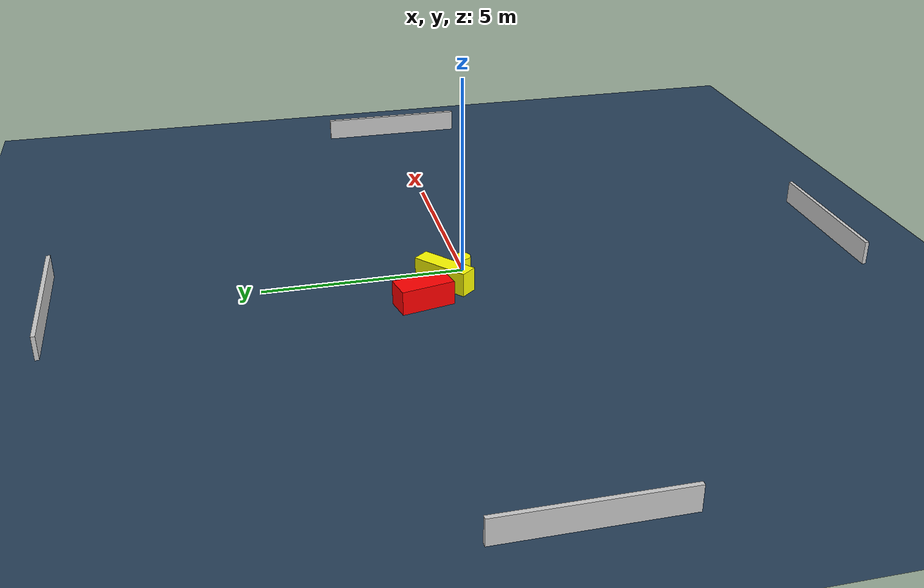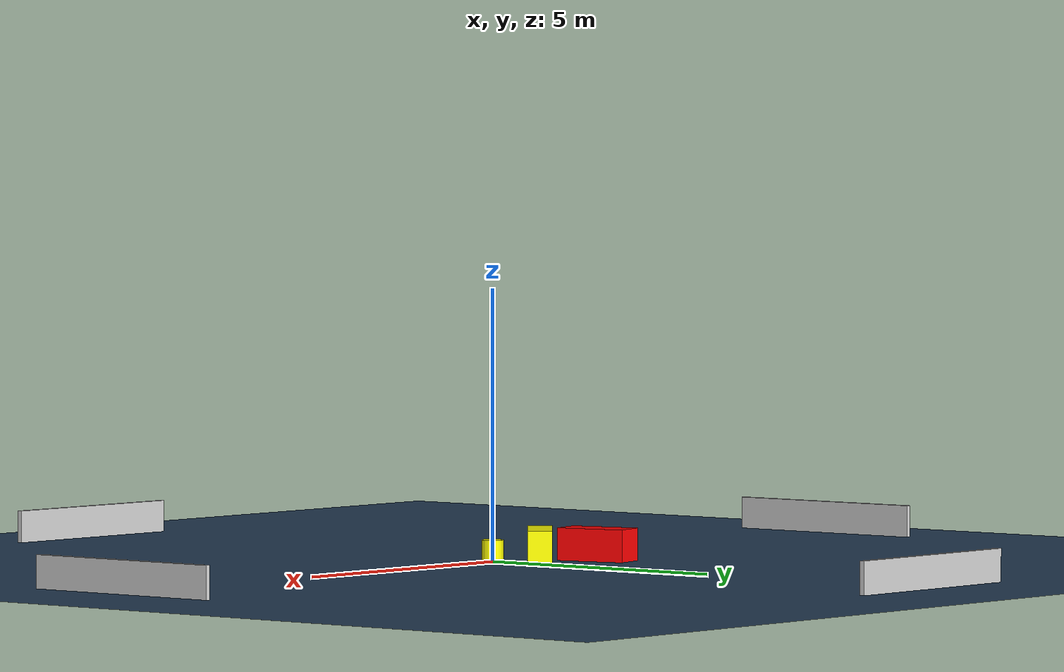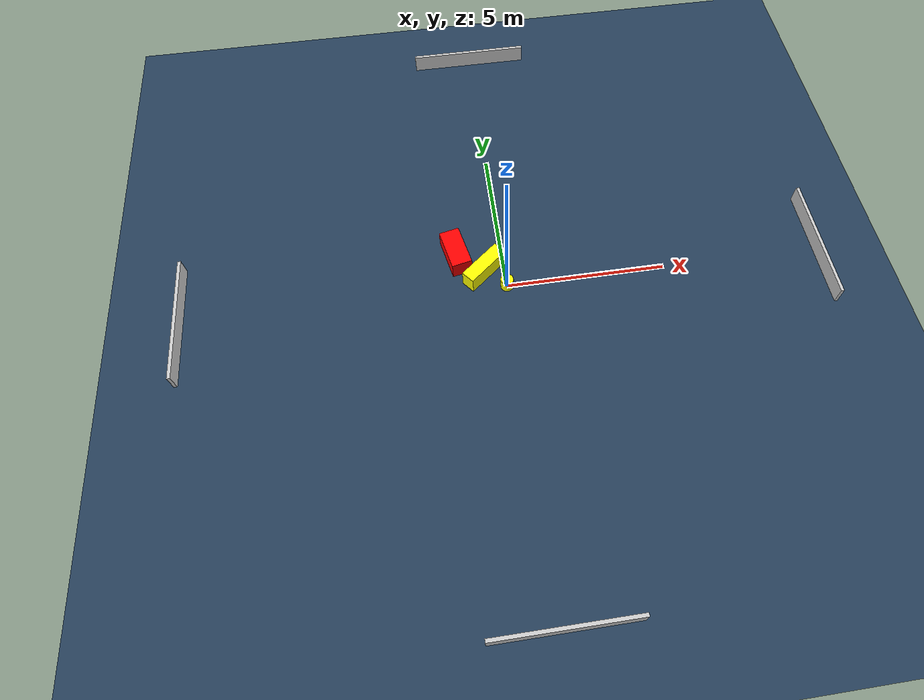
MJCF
<?xml version="1.0" ?>
<mujoco model="generated_environment">
  <option timestep="0.01" integrator="RK4" cone="elliptic"/>
  <default>
    <geom density="1"/>
  </default>
  <asset>
    <texture builtin="gradient" height="3072" name="skybox" rgb1="0.3 0.5 0.7" rgb2="0 0 0" type="skybox" width="512"/>
    <texture builtin="checker" height="300" name="groundplane" rgb1="0.2 0.3 0.4" rgb2="0.1 0.2 0.3" type="2d" width="300"/>
    <material name="groundplane" reflectance="0.2" texrepeat="5 5" texture="groundplane"/>
  </asset>
  <worldbody>
    <light dir="0 0 -1" directional="true" pos="0 0 1.5"/>
    <geom condim="3" friction="0.5 0.005 0.001" material="groundplane" name="floor" pos="0 0 0" size="0 0 0.05" type="plane"/>
    <body name="walls">
      <geom name="wall_1" condim="4" pos="-10.0 0.0 0.3" rgba="0.800000011920929 0.800000011920929 0.800000011920929 1.0" size="0.05 2.0 0.3" type="box"/>
      <geom name="wall_2" condim="4" pos="10.0 0.0 0.3" rgba="0.800000011920929 0.800000011920929 0.800000011920929 1.0" size="0.05 2.0 0.3" type="box"/>
      <geom name="wall_3" condim="4" pos="0.0 -10.0 0.3" rgba="0.800000011920929 0.800000011920929 0.800000011920929 1.0" size="2.0 0.05 0.3" type="box"/>
      <geom name="wall_4" condim="4" pos="0.0 10.0 0.3" rgba="0.800000011920929 0.800000011920929 0.800000011920929 1.0" size="2.0 0.05 0.3" type="box"/>
    </body>
    <body name="robot">
      <joint name="joint_x" type="slide" pos="0 0 0" axis="1 0 0"/>
      <joint name="joint_y" type="slide" pos="0 0 0" axis="0 1 0"/>
      <geom name="robot" type="cylinder" pos="0.0 0.0 0.2" size="0.2 0.2 0.0" mass="5.0" friction="1.0 0.005 0.0001" condim="4" rgba="1.0 1.0 0.0 1.0"/>
    </body>
    <body name="obstacle_1_movable">
      <geom name="obstacle_1_movable" condim="4" pos="-0.6363477983363331 0.6006477426946755 0.3" euler="0 0 309.8205849897172" friction="0.0 0.005 0.001" rgba="1.0 1.0 0.0 1.0" size="0.2229757667870004 0.7429342188889525 0.3" type="box" mass="0.1"/>
      <joint type="free"/>
    </body>
    <body name="obstacle_2_static">
      <geom name="obstacle_2_static" condim="4" pos="-1.4546145109208388 1.2960266726684904 0.3" euler="0 0 192.22218234101138" friction="0.0 0.005 0.001" rgba="1.0 0.0 0.0 1.0" size="0.32102883730332843 0.6617270649641072 0.3" type="box"/>
    </body>
  </worldbody>
  <actuator>
    <motor name="actuator_x" joint="joint_x" gear="1" ctrlrange="-1 1"/>
    <motor name="actuator_y" joint="joint_y" gear="1" ctrlrange="-1 1"/>
  </actuator>
</mujoco>
